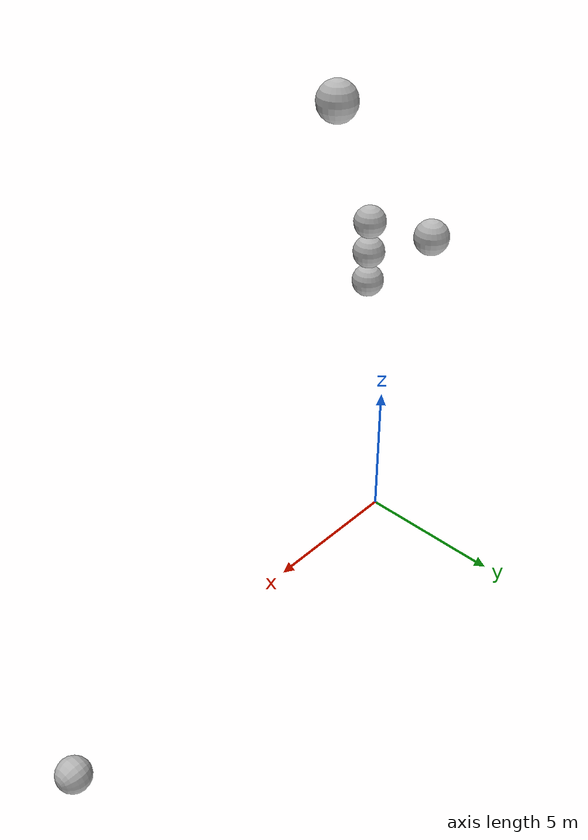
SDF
<?xml version="1.0" ?>
<sdf version='1.7'>
  <model name="model_frame_relative_to_joint">
    <link name="P">
      <pose>1 0 0 0 0 0</pose>
      <inertial>
        <pose relative_to="">0 0 0 0 0 0</pose>
      </inertial>
      <collision name="P1">
        <pose>0 0 10 0 0 0</pose>
        <geometry>
          <sphere>
            <radius>0.5</radius>
          </sphere>
        </geometry>
      </collision>
      <collision name="P2">
        <pose relative_to="">0 0 11 0 0 0</pose>
        <geometry>
          <sphere>
            <radius>0.5</radius>
          </sphere>
        </geometry>
      </collision>
      <visual name="vP1">
        <pose>0 0 10 0 0 0</pose>
        <geometry>
          <sphere>
            <radius>0.5</radius>
          </sphere>
        </geometry>
      </visual>
      <visual name="vP2">
        <pose relative_to="">0 0 11 0 0 0</pose>
        <geometry>
          <sphere>
            <radius>0.5</radius>
          </sphere>
        </geometry>
      </visual>
    </link>
    <link name="C">
      <pose>2 0 0 0 1.5707963267948966 0</pose>
      <collision name="P">
        <pose relative_to="P">0 0 12 0 0 0</pose>
        <geometry>
          <sphere>
            <radius>0.5</radius>
          </sphere>
        </geometry>
      </collision>
      <collision name="J">
        <pose relative_to="J">0 0 13 0 0 0</pose>
        <geometry>
          <sphere>
            <radius>0.5</radius>
          </sphere>
        </geometry>
      </collision>
      <collision name="F3">
        <pose relative_to="F3">0 0 14 0 0 0</pose>
        <geometry>
          <sphere>
            <radius>0.5</radius>
          </sphere>
        </geometry>
      </collision>
      <collision name="F4">
        <pose relative_to="F4">0 0 15 0 0 0</pose>
        <geometry>
          <sphere>
            <radius>0.5</radius>
          </sphere>
        </geometry>
      </collision>
      <visual name="vP">
        <pose relative_to="P">0 0 12 0 0 0</pose>
        <geometry>
          <sphere>
            <radius>0.5</radius>
          </sphere>
        </geometry>
      </visual>
      <visual name="vJ">
        <pose relative_to="J">0 0 13 0 0 0</pose>
        <geometry>
          <sphere>
            <radius>0.5</radius>
          </sphere>
        </geometry>
      </visual>
      <visual name="vF3">
        <pose relative_to="F3">0 0 14 0 0 0</pose>
        <geometry>
          <sphere>
            <radius>0.5</radius>
          </sphere>
        </geometry>
      </visual>
      <visual name="vF4">
        <pose relative_to="F4">0 0 15 0 0 0</pose>
        <geometry>
          <sphere>
            <radius>0.5</radius>
          </sphere>
        </geometry>
      </visual>
    </link>
    <joint name="J" type="fixed">
      <pose>0 3 0 0 -1.5707963267948966 0</pose>
      <parent>P</parent>
      <child>C</child>
    </joint>
    <frame name="F1">
      <pose relative_to="P">0 0 1 0 0 0</pose>  <!-- VALID: Directly relative_to link P. -->
    </frame>
    <frame name="F2">
      <pose relative_to="C">0 0 2 0 0 0</pose>  <!-- VALID: Directly relative_to link C. -->
    </frame>
    <frame name="F3">
      <pose relative_to="J">0 0 3 0 1.5707963267948966 0</pose>   <!-- VALID: Indirectly relative_to link C via joint J. -->
    </frame>
    <frame name="F4">
      <pose relative_to="F3">0 0 4 0 -1.5707963267948966 0</pose> <!-- VALID: Indirectly relative_to link C via frame F3. -->
    </frame>
  </model>
</sdf>
